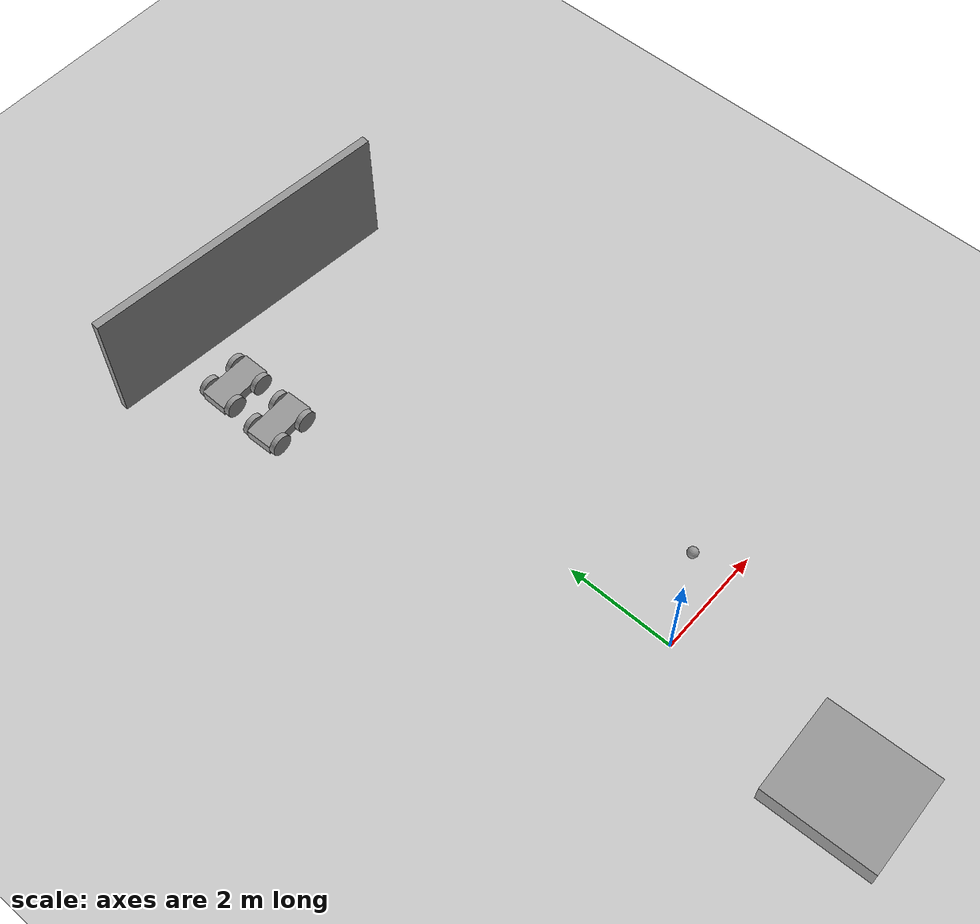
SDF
<sdf version="1.6">
 <world name="default">
  <model name="ground_plane">
   <static>1</static>
   <link name="link">
    <collision name="collision">
     <geometry><plane><normal>0 0 1</normal><size>100 100</size></plane></geometry>
     <surface><friction><ode><mu>100</mu><mu2>50</mu2></ode></friction></surface>
    </collision>
    <visual name="visual">
     <cast_shadows>0</cast_shadows>
     <geometry><plane><normal>0 0 1</normal><size>100 100</size></plane></geometry>
     <material>
      <script><uri>file://media/materials/scripts/gazebo.material</uri><name>Gazebo/Grey</name></script>
     </material>
    </visual>
   </link>
  </model>
  <model name="bed">
   <link name="link_0">
    <pose>-0.020885 0.186214 -0.326795 0 -0 0</pose>
    <inertial>
     <mass>1</mass>
     <inertia>
      <ixx>0.166667</ixx>
      <ixy>0</ixy>
      <ixz>0</ixz>
      <iyy>0.166667</iyy>
      <iyz>0</iyz>
      <izz>0.166667</izz>
     </inertia>
    </inertial>
    <visual name="visual">
     <geometry><box><size>2 1.8 0.4</size></box></geometry>
     <material>
      <lighting>1</lighting>
      <script><uri>file://media/materials/scripts/gazebo.material</uri><name>Gazebo/Grey</name></script>
      <ambient>0.3 0.3 0.3 1</ambient>
      <diffuse>0.7 0.7 0.7 1</diffuse>
      <specular>0.01 0.01 0.01 1</specular>
      <emissive>0 0 0 1</emissive>
      <shader type="vertex"><normal_map>__default__</normal_map></shader>
     </material>
    </visual>
    <collision name="collision">
     <geometry><box><size>2 1.8 0.4</size></box></geometry>
     <surface>
      <friction>
       <ode><mu>1</mu><mu2>1</mu2><fdir1>0 0 0</fdir1><slip1>0</slip1><slip2>0</slip2></ode>
       <torsional>
        <coefficient>1</coefficient>
        <patch_radius>0</patch_radius>
        <surface_radius>0</surface_radius>
        <use_patch_radius>1</use_patch_radius>
        <ode><slip>0</slip></ode>
       </torsional>
      </friction>
      <bounce><restitution_coefficient>0</restitution_coefficient><threshold>1e+06</threshold></bounce>
      <contact>
       <collide_without_contact>0</collide_without_contact>
       <collide_without_contact_bitmask>1</collide_without_contact_bitmask>
       <collide_bitmask>1</collide_bitmask>
       <ode>
        <soft_cfm>0</soft_cfm>
        <soft_erp>0.2</soft_erp>
        <kp>1e+13</kp>
        <kd>1</kd>
        <max_vel>0.01</max_vel>
        <min_depth>0</min_depth>
       </ode>
       <bullet>
        <split_impulse>1</split_impulse>
        <split_impulse_penetration_threshold>-0.01</split_impulse_penetration_threshold>
        <soft_cfm>0</soft_cfm>
        <soft_erp>0.2</soft_erp>
        <kp>1e+13</kp>
        <kd>1</kd>
       </bullet>
      </contact>
     </surface>
    </collision>
   </link>
   <link name="link_1">
    <pose>-0.770885 -0.563786 -0.001795 0 -0 0</pose>
    <inertial>
     <mass>1</mass>
     <inertia><ixx>0.145833</ixx><ixy>0</ixy><ixz>0</ixz><iyy>0.145833</iyy><iyz>0</iyz><izz>0.125</izz></inertia>
    </inertial>
    <visual name="visual">
     <geometry><cylinder><radius>0.04</radius><length>0.25</length></cylinder></geometry>
     <material>
      <lighting>1</lighting>
      <script><uri>file://media/materials/scripts/gazebo.material</uri><name>Gazebo/Grey</name></script>
      <ambient>0.3 0.3 0.3 1</ambient>
      <diffuse>0.7 0.7 0.7 1</diffuse>
      <specular>0.01 0.01 0.01 1</specular>
      <emissive>0 0 0 1</emissive>
      <shader type="vertex"><normal_map>__default__</normal_map></shader>
     </material>
    </visual>
    <collision name="collision">
     <geometry><cylinder><radius>0.04</radius><length>0.25</length></cylinder></geometry>
     <surface>
      <friction>
       <ode><mu>1</mu><mu2>1</mu2><fdir1>0 0 0</fdir1><slip1>0</slip1><slip2>0</slip2></ode>
       <torsional>
        <coefficient>1</coefficient>
        <patch_radius>0</patch_radius>
        <surface_radius>0</surface_radius>
        <use_patch_radius>1</use_patch_radius>
        <ode><slip>0</slip></ode>
       </torsional>
      </friction>
      <bounce><restitution_coefficient>0</restitution_coefficient><threshold>1e+06</threshold></bounce>
      <contact>
       <collide_without_contact>0</collide_without_contact>
       <collide_without_contact_bitmask>1</collide_without_contact_bitmask>
       <collide_bitmask>1</collide_bitmask>
       <ode>
        <soft_cfm>0</soft_cfm>
        <soft_erp>0.2</soft_erp>
        <kp>1e+13</kp>
        <kd>1</kd>
        <max_vel>0.01</max_vel>
        <min_depth>0</min_depth>
       </ode>
       <bullet>
        <split_impulse>1</split_impulse>
        <split_impulse_penetration_threshold>-0.01</split_impulse_penetration_threshold>
        <soft_cfm>0</soft_cfm>
        <soft_erp>0.2</soft_erp>
        <kp>1e+13</kp>
        <kd>1</kd>
       </bullet>
      </contact>
     </surface>
    </collision>
   </link>
   <link name="link_1_clone">
    <pose>-0.770885 0.936214 -0.001795 0 -0 0</pose>
    <inertial>
     <mass>1</mass>
     <inertia><ixx>0.145833</ixx><ixy>0</ixy><ixz>0</ixz><iyy>0.145833</iyy><iyz>0</iyz><izz>0.125</izz></inertia>
    </inertial>
    <visual name="visual">
     <geometry><cylinder><radius>0.04</radius><length>0.25</length></cylinder></geometry>
     <material>
      <lighting>1</lighting>
      <script><uri>file://media/materials/scripts/gazebo.material</uri><name>Gazebo/Grey</name></script>
      <ambient>0.3 0.3 0.3 1</ambient>
      <diffuse>0.7 0.7 0.7 1</diffuse>
      <specular>0.01 0.01 0.01 1</specular>
      <emissive>0 0 0 1</emissive>
      <shader type="vertex"><normal_map>__default__</normal_map></shader>
     </material>
    </visual>
    <collision name="collision">
     <geometry><cylinder><radius>0.04</radius><length>0.25</length></cylinder></geometry>
     <surface>
      <friction>
       <ode><mu>1</mu><mu2>1</mu2><fdir1>0 0 0</fdir1><slip1>0</slip1><slip2>0</slip2></ode>
       <torsional>
        <coefficient>1</coefficient>
        <patch_radius>0</patch_radius>
        <surface_radius>0</surface_radius>
        <use_patch_radius>1</use_patch_radius>
        <ode><slip>0</slip></ode>
       </torsional>
      </friction>
      <bounce><restitution_coefficient>0</restitution_coefficient><threshold>1e+06</threshold></bounce>
      <contact>
       <collide_without_contact>0</collide_without_contact>
       <collide_without_contact_bitmask>1</collide_without_contact_bitmask>
       <collide_bitmask>1</collide_bitmask>
       <ode>
        <soft_cfm>0</soft_cfm>
        <soft_erp>0.2</soft_erp>
        <kp>1e+13</kp>
        <kd>1</kd>
        <max_vel>0.01</max_vel>
        <min_depth>0</min_depth>
       </ode>
       <bullet>
        <split_impulse>1</split_impulse>
        <split_impulse_penetration_threshold>-0.01</split_impulse_penetration_threshold>
        <soft_cfm>0</soft_cfm>
        <soft_erp>0.2</soft_erp>
        <kp>1e+13</kp>
        <kd>1</kd>
       </bullet>
      </contact>
     </surface>
    </collision>
   </link>
   <link name="link_1_clone_0">
    <pose>0.729115 -0.563786 -0.001795 0 -0 0</pose>
    <inertial>
     <mass>1</mass>
     <inertia><ixx>0.145833</ixx><ixy>0</ixy><ixz>0</ixz><iyy>0.145833</iyy><iyz>0</iyz><izz>0.125</izz></inertia>
    </inertial>
    <visual name="visual">
     <geometry><cylinder><radius>0.04</radius><length>0.25</length></cylinder></geometry>
     <material>
      <lighting>1</lighting>
      <script><uri>file://media/materials/scripts/gazebo.material</uri><name>Gazebo/Grey</name></script>
      <ambient>0.3 0.3 0.3 1</ambient>
      <diffuse>0.7 0.7 0.7 1</diffuse>
      <specular>0.01 0.01 0.01 1</specular>
      <emissive>0 0 0 1</emissive>
      <shader type="vertex"><normal_map>__default__</normal_map></shader>
     </material>
    </visual>
    <collision name="collision">
     <geometry><cylinder><radius>0.04</radius><length>0.25</length></cylinder></geometry>
     <surface>
      <friction>
       <ode><mu>1</mu><mu2>1</mu2><fdir1>0 0 0</fdir1><slip1>0</slip1><slip2>0</slip2></ode>
       <torsional>
        <coefficient>1</coefficient>
        <patch_radius>0</patch_radius>
        <surface_radius>0</surface_radius>
        <use_patch_radius>1</use_patch_radius>
        <ode><slip>0</slip></ode>
       </torsional>
      </friction>
      <bounce><restitution_coefficient>0</restitution_coefficient><threshold>1e+06</threshold></bounce>
      <contact>
       <collide_without_contact>0</collide_without_contact>
       <collide_without_contact_bitmask>1</collide_without_contact_bitmask>
       <collide_bitmask>1</collide_bitmask>
       <ode>
        <soft_cfm>0</soft_cfm>
        <soft_erp>0.2</soft_erp>
        <kp>1e+13</kp>
        <kd>1</kd>
        <max_vel>0.01</max_vel>
        <min_depth>0</min_depth>
       </ode>
       <bullet>
        <split_impulse>1</split_impulse>
        <split_impulse_penetration_threshold>-0.01</split_impulse_penetration_threshold>
        <soft_cfm>0</soft_cfm>
        <soft_erp>0.2</soft_erp>
        <kp>1e+13</kp>
        <kd>1</kd>
       </bullet>
      </contact>
     </surface>
    </collision>
   </link>
   <link name="link_1_clone_1">
    <pose>0.729115 0.936214 -0.001795 0 -0 0</pose>
    <inertial>
     <mass>1</mass>
     <inertia><ixx>0.145833</ixx><ixy>0</ixy><ixz>0</ixz><iyy>0.145833</iyy><iyz>0</iyz><izz>0.125</izz></inertia>
    </inertial>
    <visual name="visual">
     <geometry><cylinder><radius>0.04</radius><length>0.25</length></cylinder></geometry>
     <material>
      <lighting>1</lighting>
      <script><uri>file://media/materials/scripts/gazebo.material</uri><name>Gazebo/Grey</name></script>
      <ambient>0.3 0.3 0.3 1</ambient>
      <diffuse>0.7 0.7 0.7 1</diffuse>
      <specular>0.01 0.01 0.01 1</specular>
      <emissive>0 0 0 1</emissive>
      <shader type="vertex"><normal_map>__default__</normal_map></shader>
     </material>
    </visual>
    <collision name="collision">
     <geometry><cylinder><radius>0.04</radius><length>0.25</length></cylinder></geometry>
     <surface>
      <friction>
       <ode><mu>1</mu><mu2>1</mu2><fdir1>0 0 0</fdir1><slip1>0</slip1><slip2>0</slip2></ode>
       <torsional>
        <coefficient>1</coefficient>
        <patch_radius>0</patch_radius>
        <surface_radius>0</surface_radius>
        <use_patch_radius>1</use_patch_radius>
        <ode><slip>0</slip></ode>
       </torsional>
      </friction>
      <bounce><restitution_coefficient>0</restitution_coefficient><threshold>1e+06</threshold></bounce>
      <contact>
       <collide_without_contact>0</collide_without_contact>
       <collide_without_contact_bitmask>1</collide_without_contact_bitmask>
       <collide_bitmask>1</collide_bitmask>
       <ode>
        <soft_cfm>0</soft_cfm>
        <soft_erp>0.2</soft_erp>
        <kp>1e+13</kp>
        <kd>1</kd>
        <max_vel>0.01</max_vel>
        <min_depth>0</min_depth>
       </ode>
       <bullet>
        <split_impulse>1</split_impulse>
        <split_impulse_penetration_threshold>-0.01</split_impulse_penetration_threshold>
        <soft_cfm>0</soft_cfm>
        <soft_erp>0.2</soft_erp>
        <kp>1e+13</kp>
        <kd>1</kd>
       </bullet>
      </contact>
     </surface>
    </collision>
   </link>
   <joint name="link_0_JOINT_0" type="fixed">
    <parent>link_0</parent>
    <child>link_1</child>
    <physics>
     <ode><limit><cfm>0</cfm><erp>0.2</erp></limit><suspension><cfm>0</cfm><erp>0.2</erp></suspension></ode>
    </physics>
   </joint>
   <joint name="link_0_JOINT_1" type="revolute">
    <parent>link_0</parent>
    <child>link_1_clone</child>
    <axis>
     <xyz>1 0 0</xyz>
     <use_parent_model_frame>0</use_parent_model_frame>
     <limit>
      <lower>-1.79769e+308</lower>
      <upper>1.79769e+308</upper>
      <effort>-1</effort>
      <velocity>-1</velocity>
     </limit>
     <dynamics>
      <spring_reference>0</spring_reference>
      <spring_stiffness>0</spring_stiffness>
      <damping>0</damping>
     </dynamics>
    </axis>
    <physics>
     <ode><limit><cfm>0</cfm><erp>0.2</erp></limit><suspension><cfm>0</cfm><erp>0.2</erp></suspension></ode>
    </physics>
   </joint>
   <joint name="link_0_JOINT_2" type="fixed">
    <parent>link_0</parent>
    <child>link_1_clone_0</child>
    <physics>
     <ode><limit><cfm>0</cfm><erp>0.2</erp></limit><suspension><cfm>0</cfm><erp>0.2</erp></suspension></ode>
    </physics>
   </joint>
   <joint name="link_0_JOINT_3" type="fixed">
    <parent>link_0</parent>
    <child>link_1_clone_1</child>
    <physics>
     <ode><limit><cfm>0</cfm><erp>0.2</erp></limit><suspension><cfm>0</cfm><erp>0.2</erp></suspension></ode>
    </physics>
   </joint>
   <static>0</static>
   <pose>-0.468085 -3.40254 0.123204 -3.14159 -2e-06 1.60373</pose>
  </model>
  <model name="cart">
   <link name="link_0">
    <inertial>
     <mass>1</mass>
     <inertia>
      <ixx>0.166667</ixx>
      <ixy>0</ixy>
      <ixz>0</ixz>
      <iyy>0.166667</iyy>
      <iyz>0</iyz>
      <izz>0.166667</izz>
     </inertia>
    </inertial>
    <visual name="visual">
     <geometry><box><size>1 0.5 0.2</size></box></geometry>
     <material>
      <lighting>1</lighting>
      <script><uri>file://media/materials/scripts/gazebo.material</uri><name>Gazebo/Grey</name></script>
      <ambient>0.3 0.3 0.3 1</ambient>
      <diffuse>0.7 0.7 0.7 1</diffuse>
      <specular>0.01 0.01 0.01 1</specular>
      <emissive>0 0 0 1</emissive>
      <shader type="vertex"><normal_map>__default__</normal_map></shader>
     </material>
    </visual>
    <collision name="collision">
     <geometry><box><size>1 0.5 0.2</size></box></geometry>
     <surface>
      <friction>
       <ode><mu>1</mu><mu2>1</mu2><fdir1>0 0 0</fdir1><slip1>0</slip1><slip2>0</slip2></ode>
       <torsional>
        <coefficient>1</coefficient>
        <patch_radius>0</patch_radius>
        <surface_radius>0</surface_radius>
        <use_patch_radius>1</use_patch_radius>
        <ode><slip>0</slip></ode>
       </torsional>
      </friction>
      <bounce><restitution_coefficient>0</restitution_coefficient><threshold>1e+06</threshold></bounce>
      <contact>
       <collide_without_contact>0</collide_without_contact>
       <collide_without_contact_bitmask>1</collide_without_contact_bitmask>
       <collide_bitmask>1</collide_bitmask>
       <ode>
        <soft_cfm>0</soft_cfm>
        <soft_erp>0.2</soft_erp>
        <kp>1e+13</kp>
        <kd>1</kd>
        <max_vel>0.01</max_vel>
        <min_depth>0</min_depth>
       </ode>
       <bullet>
        <split_impulse>1</split_impulse>
        <split_impulse_penetration_threshold>-0.01</split_impulse_penetration_threshold>
        <soft_cfm>0</soft_cfm>
        <soft_erp>0.2</soft_erp>
        <kp>1e+13</kp>
        <kd>1</kd>
       </bullet>
      </contact>
     </surface>
    </collision>
   </link>
   <link name="link_1">
    <pose>0.3 0.3 0 1.5708 -0 0</pose>
    <inertial>
     <mass>1</mass>
     <inertia><ixx>0.145833</ixx><ixy>0</ixy><ixz>0</ixz><iyy>0.145833</iyy><iyz>0</iyz><izz>0.125</izz></inertia>
    </inertial>
    <visual name="visual">
     <geometry><cylinder><radius>0.2</radius><length>0.1</length></cylinder></geometry>
     <material>
      <lighting>1</lighting>
      <script><uri>file://media/materials/scripts/gazebo.material</uri><name>Gazebo/Grey</name></script>
      <ambient>0.3 0.3 0.3 1</ambient>
      <diffuse>0.7 0.7 0.7 1</diffuse>
      <specular>0.01 0.01 0.01 1</specular>
      <emissive>0 0 0 1</emissive>
      <shader type="vertex"><normal_map>__default__</normal_map></shader>
     </material>
    </visual>
    <collision name="collision">
     <geometry><cylinder><radius>0.2</radius><length>0.1</length></cylinder></geometry>
     <surface>
      <friction>
       <ode><mu>1</mu><mu2>1</mu2><fdir1>0 0 0</fdir1><slip1>0</slip1><slip2>0</slip2></ode>
       <torsional>
        <coefficient>1</coefficient>
        <patch_radius>0</patch_radius>
        <surface_radius>0</surface_radius>
        <use_patch_radius>1</use_patch_radius>
        <ode><slip>0</slip></ode>
       </torsional>
      </friction>
      <bounce><restitution_coefficient>0</restitution_coefficient><threshold>1e+06</threshold></bounce>
      <contact>
       <collide_without_contact>0</collide_without_contact>
       <collide_without_contact_bitmask>1</collide_without_contact_bitmask>
       <collide_bitmask>1</collide_bitmask>
       <ode>
        <soft_cfm>0</soft_cfm>
        <soft_erp>0.2</soft_erp>
        <kp>1e+13</kp>
        <kd>1</kd>
        <max_vel>0.01</max_vel>
        <min_depth>0</min_depth>
       </ode>
       <bullet>
        <split_impulse>1</split_impulse>
        <split_impulse_penetration_threshold>-0.01</split_impulse_penetration_threshold>
        <soft_cfm>0</soft_cfm>
        <soft_erp>0.2</soft_erp>
        <kp>1e+13</kp>
        <kd>1</kd>
       </bullet>
      </contact>
     </surface>
    </collision>
   </link>
   <link name="link_1_clone">
    <pose>0.3 -0.3 0 1.5708 -0 0</pose>
    <inertial>
     <mass>1</mass>
     <inertia><ixx>0.145833</ixx><ixy>0</ixy><ixz>0</ixz><iyy>0.145833</iyy><iyz>0</iyz><izz>0.125</izz></inertia>
    </inertial>
    <visual name="visual">
     <geometry><cylinder><radius>0.2</radius><length>0.1</length></cylinder></geometry>
     <material>
      <lighting>1</lighting>
      <script><uri>file://media/materials/scripts/gazebo.material</uri><name>Gazebo/Grey</name></script>
      <ambient>0.3 0.3 0.3 1</ambient>
      <diffuse>0.7 0.7 0.7 1</diffuse>
      <specular>0.01 0.01 0.01 1</specular>
      <emissive>0 0 0 1</emissive>
      <shader type="vertex"><normal_map>__default__</normal_map></shader>
     </material>
    </visual>
    <collision name="collision">
     <geometry><cylinder><radius>0.2</radius><length>0.1</length></cylinder></geometry>
     <surface>
      <friction>
       <ode><mu>1</mu><mu2>1</mu2><fdir1>0 0 0</fdir1><slip1>0</slip1><slip2>0</slip2></ode>
       <torsional>
        <coefficient>1</coefficient>
        <patch_radius>0</patch_radius>
        <surface_radius>0</surface_radius>
        <use_patch_radius>1</use_patch_radius>
        <ode><slip>0</slip></ode>
       </torsional>
      </friction>
      <bounce><restitution_coefficient>0</restitution_coefficient><threshold>1e+06</threshold></bounce>
      <contact>
       <collide_without_contact>0</collide_without_contact>
       <collide_without_contact_bitmask>1</collide_without_contact_bitmask>
       <collide_bitmask>1</collide_bitmask>
       <ode>
        <soft_cfm>0</soft_cfm>
        <soft_erp>0.2</soft_erp>
        <kp>1e+13</kp>
        <kd>1</kd>
        <max_vel>0.01</max_vel>
        <min_depth>0</min_depth>
       </ode>
       <bullet>
        <split_impulse>1</split_impulse>
        <split_impulse_penetration_threshold>-0.01</split_impulse_penetration_threshold>
        <soft_cfm>0</soft_cfm>
        <soft_erp>0.2</soft_erp>
        <kp>1e+13</kp>
        <kd>1</kd>
       </bullet>
      </contact>
     </surface>
    </collision>
   </link>
   <link name="link_1_clone_0">
    <pose>-0.3 -0.3 0 1.5708 -0 0</pose>
    <inertial>
     <mass>1</mass>
     <inertia><ixx>0.145833</ixx><ixy>0</ixy><ixz>0</ixz><iyy>0.145833</iyy><iyz>0</iyz><izz>0.125</izz></inertia>
    </inertial>
    <visual name="visual">
     <geometry><cylinder><radius>0.2</radius><length>0.1</length></cylinder></geometry>
     <material>
      <lighting>1</lighting>
      <script><uri>file://media/materials/scripts/gazebo.material</uri><name>Gazebo/Grey</name></script>
      <ambient>0.3 0.3 0.3 1</ambient>
      <diffuse>0.7 0.7 0.7 1</diffuse>
      <specular>0.01 0.01 0.01 1</specular>
      <emissive>0 0 0 1</emissive>
      <shader type="vertex"><normal_map>__default__</normal_map></shader>
     </material>
    </visual>
    <collision name="collision">
     <geometry><cylinder><radius>0.2</radius><length>0.1</length></cylinder></geometry>
     <surface>
      <friction>
       <ode><mu>1</mu><mu2>1</mu2><fdir1>0 0 0</fdir1><slip1>0</slip1><slip2>0</slip2></ode>
       <torsional>
        <coefficient>1</coefficient>
        <patch_radius>0</patch_radius>
        <surface_radius>0</surface_radius>
        <use_patch_radius>1</use_patch_radius>
        <ode><slip>0</slip></ode>
       </torsional>
      </friction>
      <bounce><restitution_coefficient>0</restitution_coefficient><threshold>1e+06</threshold></bounce>
      <contact>
       <collide_without_contact>0</collide_without_contact>
       <collide_without_contact_bitmask>1</collide_without_contact_bitmask>
       <collide_bitmask>1</collide_bitmask>
       <ode>
        <soft_cfm>0</soft_cfm>
        <soft_erp>0.2</soft_erp>
        <kp>1e+13</kp>
        <kd>1</kd>
        <max_vel>0.01</max_vel>
        <min_depth>0</min_depth>
       </ode>
       <bullet>
        <split_impulse>1</split_impulse>
        <split_impulse_penetration_threshold>-0.01</split_impulse_penetration_threshold>
        <soft_cfm>0</soft_cfm>
        <soft_erp>0.2</soft_erp>
        <kp>1e+13</kp>
        <kd>1</kd>
       </bullet>
      </contact>
     </surface>
    </collision>
   </link>
   <link name="link_1_clone_1">
    <pose>-0.3 0.3 0 1.5708 -0 0</pose>
    <inertial>
     <mass>1</mass>
     <inertia><ixx>0.145833</ixx><ixy>0</ixy><ixz>0</ixz><iyy>0.145833</iyy><iyz>0</iyz><izz>0.125</izz></inertia>
    </inertial>
    <visual name="visual">
     <geometry><cylinder><radius>0.2</radius><length>0.1</length></cylinder></geometry>
     <material>
      <lighting>1</lighting>
      <script><uri>file://media/materials/scripts/gazebo.material</uri><name>Gazebo/Grey</name></script>
      <ambient>0.3 0.3 0.3 1</ambient>
      <diffuse>0.7 0.7 0.7 1</diffuse>
      <specular>0.01 0.01 0.01 1</specular>
      <emissive>0 0 0 1</emissive>
      <shader type="vertex"><normal_map>__default__</normal_map></shader>
     </material>
    </visual>
    <collision name="collision">
     <geometry><cylinder><radius>0.2</radius><length>0.1</length></cylinder></geometry>
     <surface>
      <friction>
       <ode><mu>1</mu><mu2>1</mu2><fdir1>0 0 0</fdir1><slip1>0</slip1><slip2>0</slip2></ode>
       <torsional>
        <coefficient>1</coefficient>
        <patch_radius>0</patch_radius>
        <surface_radius>0</surface_radius>
        <use_patch_radius>1</use_patch_radius>
        <ode><slip>0</slip></ode>
       </torsional>
      </friction>
      <bounce><restitution_coefficient>0</restitution_coefficient><threshold>1e+06</threshold></bounce>
      <contact>
       <collide_without_contact>0</collide_without_contact>
       <collide_without_contact_bitmask>1</collide_without_contact_bitmask>
       <collide_bitmask>1</collide_bitmask>
       <ode>
        <soft_cfm>0</soft_cfm>
        <soft_erp>0.2</soft_erp>
        <kp>1e+13</kp>
        <kd>1</kd>
        <max_vel>0.01</max_vel>
        <min_depth>0</min_depth>
       </ode>
       <bullet>
        <split_impulse>1</split_impulse>
        <split_impulse_penetration_threshold>-0.01</split_impulse_penetration_threshold>
        <soft_cfm>0</soft_cfm>
        <soft_erp>0.2</soft_erp>
        <kp>1e+13</kp>
        <kd>1</kd>
       </bullet>
      </contact>
     </surface>
    </collision>
   </link>
   <joint name="link_0_JOINT_1" type="revolute">
    <parent>link_0</parent>
    <child>link_1</child>
    <axis>
     <xyz>0 0 1</xyz>
     <use_parent_model_frame>0</use_parent_model_frame>
     <limit>
      <lower>-1.79769e+308</lower>
      <upper>1.79769e+308</upper>
      <effort>-1</effort>
      <velocity>-1</velocity>
     </limit>
     <dynamics>
      <spring_reference>0</spring_reference>
      <spring_stiffness>0</spring_stiffness>
      <damping>0</damping>
     </dynamics>
    </axis>
    <physics>
     <ode><limit><cfm>0</cfm><erp>0.2</erp></limit><suspension><cfm>0</cfm><erp>0.2</erp></suspension></ode>
    </physics>
   </joint>
   <joint name="link_0_JOINT_2" type="revolute">
    <parent>link_0</parent>
    <child>link_1_clone</child>
    <axis>
     <xyz>0 0 1</xyz>
     <use_parent_model_frame>0</use_parent_model_frame>
     <limit>
      <lower>-1.79769e+308</lower>
      <upper>1.79769e+308</upper>
      <effort>-1</effort>
      <velocity>-1</velocity>
     </limit>
     <dynamics>
      <spring_reference>0</spring_reference>
      <spring_stiffness>0</spring_stiffness>
      <damping>0</damping>
     </dynamics>
    </axis>
    <physics>
     <ode><limit><cfm>0</cfm><erp>0.2</erp></limit><suspension><cfm>0</cfm><erp>0.2</erp></suspension></ode>
    </physics>
   </joint>
   <joint name="link_0_JOINT_3" type="revolute">
    <parent>link_0</parent>
    <child>link_1_clone_0</child>
    <axis>
     <xyz>0 0 1</xyz>
     <use_parent_model_frame>0</use_parent_model_frame>
     <limit>
      <lower>-1.79769e+308</lower>
      <upper>1.79769e+308</upper>
      <effort>-1</effort>
      <velocity>-1</velocity>
     </limit>
     <dynamics>
      <spring_reference>0</spring_reference>
      <spring_stiffness>0</spring_stiffness>
      <damping>0</damping>
     </dynamics>
    </axis>
    <physics>
     <ode><limit><cfm>0</cfm><erp>0.2</erp></limit><suspension><cfm>0</cfm><erp>0.2</erp></suspension></ode>
    </physics>
   </joint>
   <joint name="link_0_JOINT_4" type="revolute">
    <parent>link_0</parent>
    <child>link_1_clone_1</child>
    <axis>
     <xyz>0 0 1</xyz>
     <use_parent_model_frame>0</use_parent_model_frame>
     <limit>
      <lower>-1.79769e+308</lower>
      <upper>1.79769e+308</upper>
      <effort>-1</effort>
      <velocity>-1</velocity>
     </limit>
     <dynamics>
      <spring_reference>0</spring_reference>
      <spring_stiffness>0</spring_stiffness>
      <damping>0</damping>
     </dynamics>
    </axis>
    <physics>
     <ode><limit><cfm>0</cfm><erp>0.2</erp></limit><suspension><cfm>0</cfm><erp>0.2</erp></suspension></ode>
    </physics>
   </joint>
   <static>0</static>
   <pose>-1.09412 8.47899 0.199999 -3e-06 -0 -0.008102</pose>
  </model>
  <model name="cart_0">
   <link name="link_0">
    <inertial>
     <mass>1</mass>
     <inertia>
      <ixx>0.166667</ixx>
      <ixy>0</ixy>
      <ixz>0</ixz>
      <iyy>0.166667</iyy>
      <iyz>0</iyz>
      <izz>0.166667</izz>
     </inertia>
    </inertial>
    <visual name="visual">
     <geometry><box><size>1 0.5 0.2</size></box></geometry>
     <material>
      <lighting>1</lighting>
      <script><uri>file://media/materials/scripts/gazebo.material</uri><name>Gazebo/Grey</name></script>
      <ambient>0.3 0.3 0.3 1</ambient>
      <diffuse>0.7 0.7 0.7 1</diffuse>
      <specular>0.01 0.01 0.01 1</specular>
      <emissive>0 0 0 1</emissive>
      <shader type="vertex"><normal_map>__default__</normal_map></shader>
     </material>
    </visual>
    <collision name="collision">
     <geometry><box><size>1 0.5 0.2</size></box></geometry>
     <surface>
      <friction>
       <ode><mu>1</mu><mu2>1</mu2><fdir1>0 0 0</fdir1><slip1>0</slip1><slip2>0</slip2></ode>
       <torsional>
        <coefficient>1</coefficient>
        <patch_radius>0</patch_radius>
        <surface_radius>0</surface_radius>
        <use_patch_radius>1</use_patch_radius>
        <ode><slip>0</slip></ode>
       </torsional>
      </friction>
      <bounce><restitution_coefficient>0</restitution_coefficient><threshold>1e+06</threshold></bounce>
      <contact>
       <collide_without_contact>0</collide_without_contact>
       <collide_without_contact_bitmask>1</collide_without_contact_bitmask>
       <collide_bitmask>1</collide_bitmask>
       <ode>
        <soft_cfm>0</soft_cfm>
        <soft_erp>0.2</soft_erp>
        <kp>1e+13</kp>
        <kd>1</kd>
        <max_vel>0.01</max_vel>
        <min_depth>0</min_depth>
       </ode>
       <bullet>
        <split_impulse>1</split_impulse>
        <split_impulse_penetration_threshold>-0.01</split_impulse_penetration_threshold>
        <soft_cfm>0</soft_cfm>
        <soft_erp>0.2</soft_erp>
        <kp>1e+13</kp>
        <kd>1</kd>
       </bullet>
      </contact>
     </surface>
    </collision>
   </link>
   <link name="link_1">
    <pose>0.3 0.3 0 1.5708 -0 0</pose>
    <inertial>
     <mass>1</mass>
     <inertia><ixx>0.145833</ixx><ixy>0</ixy><ixz>0</ixz><iyy>0.145833</iyy><iyz>0</iyz><izz>0.125</izz></inertia>
    </inertial>
    <visual name="visual">
     <geometry><cylinder><radius>0.2</radius><length>0.1</length></cylinder></geometry>
     <material>
      <lighting>1</lighting>
      <script><uri>file://media/materials/scripts/gazebo.material</uri><name>Gazebo/Grey</name></script>
      <ambient>0.3 0.3 0.3 1</ambient>
      <diffuse>0.7 0.7 0.7 1</diffuse>
      <specular>0.01 0.01 0.01 1</specular>
      <emissive>0 0 0 1</emissive>
      <shader type="vertex"><normal_map>__default__</normal_map></shader>
     </material>
    </visual>
    <collision name="collision">
     <geometry><cylinder><radius>0.2</radius><length>0.1</length></cylinder></geometry>
     <surface>
      <friction>
       <ode><mu>1</mu><mu2>1</mu2><fdir1>0 0 0</fdir1><slip1>0</slip1><slip2>0</slip2></ode>
       <torsional>
        <coefficient>1</coefficient>
        <patch_radius>0</patch_radius>
        <surface_radius>0</surface_radius>
        <use_patch_radius>1</use_patch_radius>
        <ode><slip>0</slip></ode>
       </torsional>
      </friction>
      <bounce><restitution_coefficient>0</restitution_coefficient><threshold>1e+06</threshold></bounce>
      <contact>
       <collide_without_contact>0</collide_without_contact>
       <collide_without_contact_bitmask>1</collide_without_contact_bitmask>
       <collide_bitmask>1</collide_bitmask>
       <ode>
        <soft_cfm>0</soft_cfm>
        <soft_erp>0.2</soft_erp>
        <kp>1e+13</kp>
        <kd>1</kd>
        <max_vel>0.01</max_vel>
        <min_depth>0</min_depth>
       </ode>
       <bullet>
        <split_impulse>1</split_impulse>
        <split_impulse_penetration_threshold>-0.01</split_impulse_penetration_threshold>
        <soft_cfm>0</soft_cfm>
        <soft_erp>0.2</soft_erp>
        <kp>1e+13</kp>
        <kd>1</kd>
       </bullet>
      </contact>
     </surface>
    </collision>
   </link>
   <link name="link_1_clone">
    <pose>0.3 -0.3 0 1.5708 -0 0</pose>
    <inertial>
     <mass>1</mass>
     <inertia><ixx>0.145833</ixx><ixy>0</ixy><ixz>0</ixz><iyy>0.145833</iyy><iyz>0</iyz><izz>0.125</izz></inertia>
    </inertial>
    <visual name="visual">
     <geometry><cylinder><radius>0.2</radius><length>0.1</length></cylinder></geometry>
     <material>
      <lighting>1</lighting>
      <script><uri>file://media/materials/scripts/gazebo.material</uri><name>Gazebo/Grey</name></script>
      <ambient>0.3 0.3 0.3 1</ambient>
      <diffuse>0.7 0.7 0.7 1</diffuse>
      <specular>0.01 0.01 0.01 1</specular>
      <emissive>0 0 0 1</emissive>
      <shader type="vertex"><normal_map>__default__</normal_map></shader>
     </material>
    </visual>
    <collision name="collision">
     <geometry><cylinder><radius>0.2</radius><length>0.1</length></cylinder></geometry>
     <surface>
      <friction>
       <ode><mu>1</mu><mu2>1</mu2><fdir1>0 0 0</fdir1><slip1>0</slip1><slip2>0</slip2></ode>
       <torsional>
        <coefficient>1</coefficient>
        <patch_radius>0</patch_radius>
        <surface_radius>0</surface_radius>
        <use_patch_radius>1</use_patch_radius>
        <ode><slip>0</slip></ode>
       </torsional>
      </friction>
      <bounce><restitution_coefficient>0</restitution_coefficient><threshold>1e+06</threshold></bounce>
      <contact>
       <collide_without_contact>0</collide_without_contact>
       <collide_without_contact_bitmask>1</collide_without_contact_bitmask>
       <collide_bitmask>1</collide_bitmask>
       <ode>
        <soft_cfm>0</soft_cfm>
        <soft_erp>0.2</soft_erp>
        <kp>1e+13</kp>
        <kd>1</kd>
        <max_vel>0.01</max_vel>
        <min_depth>0</min_depth>
       </ode>
       <bullet>
        <split_impulse>1</split_impulse>
        <split_impulse_penetration_threshold>-0.01</split_impulse_penetration_threshold>
        <soft_cfm>0</soft_cfm>
        <soft_erp>0.2</soft_erp>
        <kp>1e+13</kp>
        <kd>1</kd>
       </bullet>
      </contact>
     </surface>
    </collision>
   </link>
   <link name="link_1_clone_0">
    <pose>-0.3 -0.3 0 1.5708 -0 0</pose>
    <inertial>
     <mass>1</mass>
     <inertia><ixx>0.145833</ixx><ixy>0</ixy><ixz>0</ixz><iyy>0.145833</iyy><iyz>0</iyz><izz>0.125</izz></inertia>
    </inertial>
    <visual name="visual">
     <geometry><cylinder><radius>0.2</radius><length>0.1</length></cylinder></geometry>
     <material>
      <lighting>1</lighting>
      <script><uri>file://media/materials/scripts/gazebo.material</uri><name>Gazebo/Grey</name></script>
      <ambient>0.3 0.3 0.3 1</ambient>
      <diffuse>0.7 0.7 0.7 1</diffuse>
      <specular>0.01 0.01 0.01 1</specular>
      <emissive>0 0 0 1</emissive>
      <shader type="vertex"><normal_map>__default__</normal_map></shader>
     </material>
    </visual>
    <collision name="collision">
     <geometry><cylinder><radius>0.2</radius><length>0.1</length></cylinder></geometry>
     <surface>
      <friction>
       <ode><mu>1</mu><mu2>1</mu2><fdir1>0 0 0</fdir1><slip1>0</slip1><slip2>0</slip2></ode>
       <torsional>
        <coefficient>1</coefficient>
        <patch_radius>0</patch_radius>
        <surface_radius>0</surface_radius>
        <use_patch_radius>1</use_patch_radius>
        <ode><slip>0</slip></ode>
       </torsional>
      </friction>
      <bounce><restitution_coefficient>0</restitution_coefficient><threshold>1e+06</threshold></bounce>
      <contact>
       <collide_without_contact>0</collide_without_contact>
       <collide_without_contact_bitmask>1</collide_without_contact_bitmask>
       <collide_bitmask>1</collide_bitmask>
       <ode>
        <soft_cfm>0</soft_cfm>
        <soft_erp>0.2</soft_erp>
        <kp>1e+13</kp>
        <kd>1</kd>
        <max_vel>0.01</max_vel>
        <min_depth>0</min_depth>
       </ode>
       <bullet>
        <split_impulse>1</split_impulse>
        <split_impulse_penetration_threshold>-0.01</split_impulse_penetration_threshold>
        <soft_cfm>0</soft_cfm>
        <soft_erp>0.2</soft_erp>
        <kp>1e+13</kp>
        <kd>1</kd>
       </bullet>
      </contact>
     </surface>
    </collision>
   </link>
   <link name="link_1_clone_1">
    <pose>-0.3 0.3 0 1.5708 -0 0</pose>
    <inertial>
     <mass>1</mass>
     <inertia><ixx>0.145833</ixx><ixy>0</ixy><ixz>0</ixz><iyy>0.145833</iyy><iyz>0</iyz><izz>0.125</izz></inertia>
    </inertial>
    <visual name="visual">
     <geometry><cylinder><radius>0.2</radius><length>0.1</length></cylinder></geometry>
     <material>
      <lighting>1</lighting>
      <script><uri>file://media/materials/scripts/gazebo.material</uri><name>Gazebo/Grey</name></script>
      <ambient>0.3 0.3 0.3 1</ambient>
      <diffuse>0.7 0.7 0.7 1</diffuse>
      <specular>0.01 0.01 0.01 1</specular>
      <emissive>0 0 0 1</emissive>
      <shader type="vertex"><normal_map>__default__</normal_map></shader>
     </material>
    </visual>
    <collision name="collision">
     <geometry><cylinder><radius>0.2</radius><length>0.1</length></cylinder></geometry>
     <surface>
      <friction>
       <ode><mu>1</mu><mu2>1</mu2><fdir1>0 0 0</fdir1><slip1>0</slip1><slip2>0</slip2></ode>
       <torsional>
        <coefficient>1</coefficient>
        <patch_radius>0</patch_radius>
        <surface_radius>0</surface_radius>
        <use_patch_radius>1</use_patch_radius>
        <ode><slip>0</slip></ode>
       </torsional>
      </friction>
      <bounce><restitution_coefficient>0</restitution_coefficient><threshold>1e+06</threshold></bounce>
      <contact>
       <collide_without_contact>0</collide_without_contact>
       <collide_without_contact_bitmask>1</collide_without_contact_bitmask>
       <collide_bitmask>1</collide_bitmask>
       <ode>
        <soft_cfm>0</soft_cfm>
        <soft_erp>0.2</soft_erp>
        <kp>1e+13</kp>
        <kd>1</kd>
        <max_vel>0.01</max_vel>
        <min_depth>0</min_depth>
       </ode>
       <bullet>
        <split_impulse>1</split_impulse>
        <split_impulse_penetration_threshold>-0.01</split_impulse_penetration_threshold>
        <soft_cfm>0</soft_cfm>
        <soft_erp>0.2</soft_erp>
        <kp>1e+13</kp>
        <kd>1</kd>
       </bullet>
      </contact>
     </surface>
    </collision>
   </link>
   <joint name="link_0_JOINT_1" type="revolute">
    <parent>link_0</parent>
    <child>link_1</child>
    <axis>
     <xyz>0 0 1</xyz>
     <use_parent_model_frame>0</use_parent_model_frame>
     <limit>
      <lower>-1.79769e+308</lower>
      <upper>1.79769e+308</upper>
      <effort>-1</effort>
      <velocity>-1</velocity>
     </limit>
     <dynamics>
      <spring_reference>0</spring_reference>
      <spring_stiffness>0</spring_stiffness>
      <damping>0</damping>
     </dynamics>
    </axis>
    <physics>
     <ode><limit><cfm>0</cfm><erp>0.2</erp></limit><suspension><cfm>0</cfm><erp>0.2</erp></suspension></ode>
    </physics>
   </joint>
   <joint name="link_0_JOINT_2" type="revolute">
    <parent>link_0</parent>
    <child>link_1_clone</child>
    <axis>
     <xyz>0 0 1</xyz>
     <use_parent_model_frame>0</use_parent_model_frame>
     <limit>
      <lower>-1.79769e+308</lower>
      <upper>1.79769e+308</upper>
      <effort>-1</effort>
      <velocity>-1</velocity>
     </limit>
     <dynamics>
      <spring_reference>0</spring_reference>
      <spring_stiffness>0</spring_stiffness>
      <damping>0</damping>
     </dynamics>
    </axis>
    <physics>
     <ode><limit><cfm>0</cfm><erp>0.2</erp></limit><suspension><cfm>0</cfm><erp>0.2</erp></suspension></ode>
    </physics>
   </joint>
   <joint name="link_0_JOINT_3" type="revolute">
    <parent>link_0</parent>
    <child>link_1_clone_0</child>
    <axis>
     <xyz>0 0 1</xyz>
     <use_parent_model_frame>0</use_parent_model_frame>
     <limit>
      <lower>-1.79769e+308</lower>
      <upper>1.79769e+308</upper>
      <effort>-1</effort>
      <velocity>-1</velocity>
     </limit>
     <dynamics>
      <spring_reference>0</spring_reference>
      <spring_stiffness>0</spring_stiffness>
      <damping>0</damping>
     </dynamics>
    </axis>
    <physics>
     <ode><limit><cfm>0</cfm><erp>0.2</erp></limit><suspension><cfm>0</cfm><erp>0.2</erp></suspension></ode>
    </physics>
   </joint>
   <joint name="link_0_JOINT_4" type="revolute">
    <parent>link_0</parent>
    <child>link_1_clone_1</child>
    <axis>
     <xyz>0 0 1</xyz>
     <use_parent_model_frame>0</use_parent_model_frame>
     <limit>
      <lower>-1.79769e+308</lower>
      <upper>1.79769e+308</upper>
      <effort>-1</effort>
      <velocity>-1</velocity>
     </limit>
     <dynamics>
      <spring_reference>0</spring_reference>
      <spring_stiffness>0</spring_stiffness>
      <damping>0</damping>
     </dynamics>
    </axis>
    <physics>
     <ode><limit><cfm>0</cfm><erp>0.2</erp></limit><suspension><cfm>0</cfm><erp>0.2</erp></suspension></ode>
    </physics>
   </joint>
   <static>0</static>
   <pose>-1.14338 7.38038 0.2 2e-06 -0 0.02567</pose>
  </model>
  <model name="unit_box">
   <pose>0.253186 9.44667 1.15291 -6e-06 -4.6e-05 -0.09044</pose>
   <link name="link">
    <inertial>
     <mass>1</mass>
     <inertia>
      <ixx>0.166667</ixx>
      <ixy>0</ixy>
      <ixz>0</ixz>
      <iyy>0.166667</iyy>
      <iyz>0</iyz>
      <izz>0.166667</izz>
     </inertia>
    </inertial>
    <collision name="collision"><geometry><box><size>5.65755 0.150753 2.30607</size></box></geometry></collision>
    <visual name="visual">
     <geometry><box><size>5.65755 0.150753 2.30607</size></box></geometry>
     <material>
      <script><name>Gazebo/Grey</name><uri>file://media/materials/scripts/gazebo.material</uri></script>
     </material>
    </visual>
   </link>
  </model>
  <model name="my_ball">
   <link name="link_0">
    <inertial>
     <mass>1</mass>
     <inertia><ixx>0.1</ixx><ixy>0</ixy><ixz>0</ixz><iyy>0.1</iyy><iyz>0</iyz><izz>0.1</izz></inertia>
    </inertial>
    <visual name="visual">
     <geometry><sphere><radius>0.1</radius></sphere></geometry>
     <material>
      <lighting>1</lighting>
      <script><uri>file://media/materials/scripts/gazebo.material</uri><name>Gazebo/Grey</name></script>
      <shader type="pixel"><normal_map>__default__</normal_map></shader>
      <ambient>1 1 1 1</ambient>
      <diffuse>1 1 1 1</diffuse>
      <specular>1 1 1 1</specular>
      <emissive>1 1 1 1</emissive>
     </material>
    </visual>
    <collision name="collision">
     <geometry><sphere><radius>0.1</radius></sphere></geometry>
     <surface>
      <friction>
       <ode><mu>1</mu><mu2>1</mu2><fdir1>0 0 0</fdir1><slip1>0</slip1><slip2>0</slip2></ode>
       <torsional>
        <coefficient>1</coefficient>
        <patch_radius>0</patch_radius>
        <surface_radius>0</surface_radius>
        <use_patch_radius>1</use_patch_radius>
        <ode><slip>0</slip></ode>
       </torsional>
      </friction>
      <bounce><restitution_coefficient>0</restitution_coefficient><threshold>1e+06</threshold></bounce>
      <contact>
       <collide_without_contact>0</collide_without_contact>
       <collide_without_contact_bitmask>1</collide_without_contact_bitmask>
       <collide_bitmask>1</collide_bitmask>
       <ode>
        <soft_cfm>0</soft_cfm>
        <soft_erp>0.2</soft_erp>
        <kp>1e+13</kp>
        <kd>1</kd>
        <max_vel>0.01</max_vel>
        <min_depth>0</min_depth>
       </ode>
       <bullet>
        <split_impulse>1</split_impulse>
        <split_impulse_penetration_threshold>-0.01</split_impulse_penetration_threshold>
        <soft_cfm>0</soft_cfm>
        <soft_erp>0.2</soft_erp>
        <kp>1e+13</kp>
        <kd>1</kd>
       </bullet>
      </contact>
     </surface>
    </collision>
   </link>
   <static>0</static>
   <pose>1.48125 0.711071 0.099991 0 -0 0</pose>
  </model>
 </world>
</sdf>
